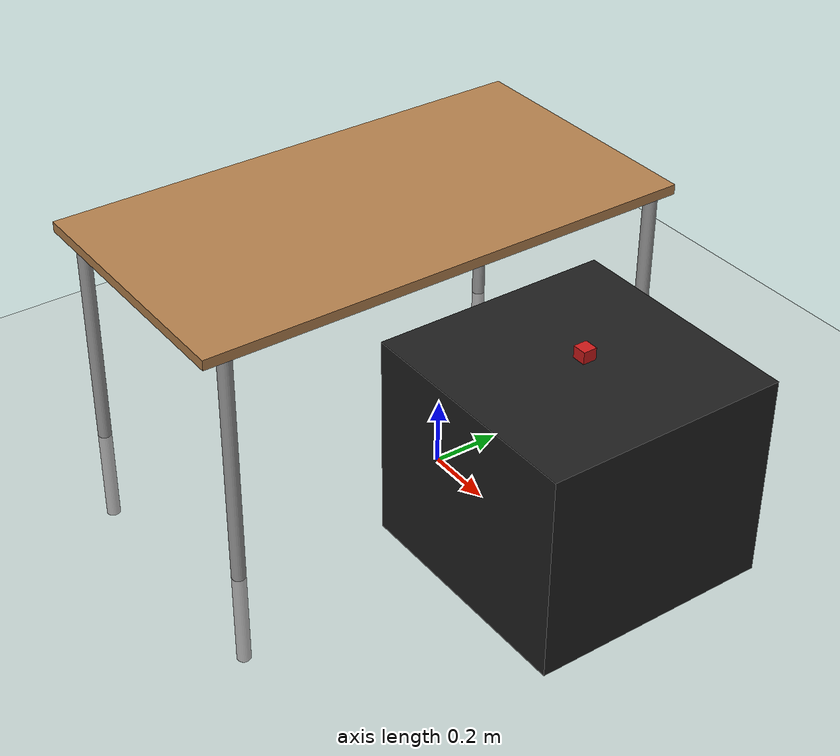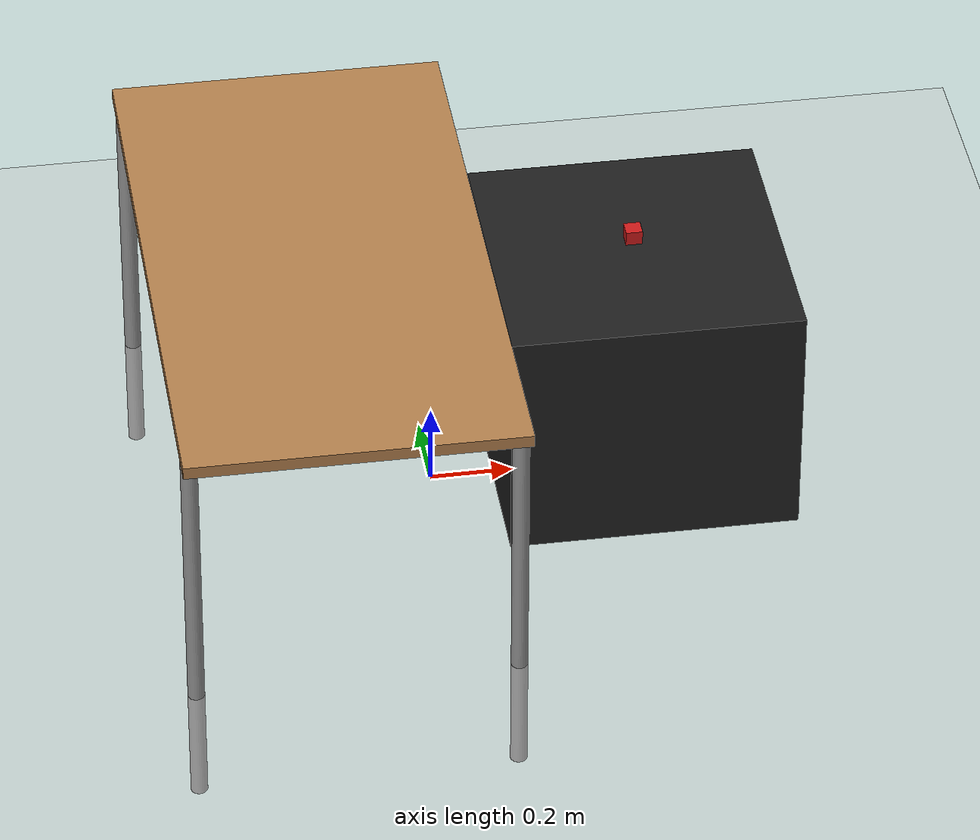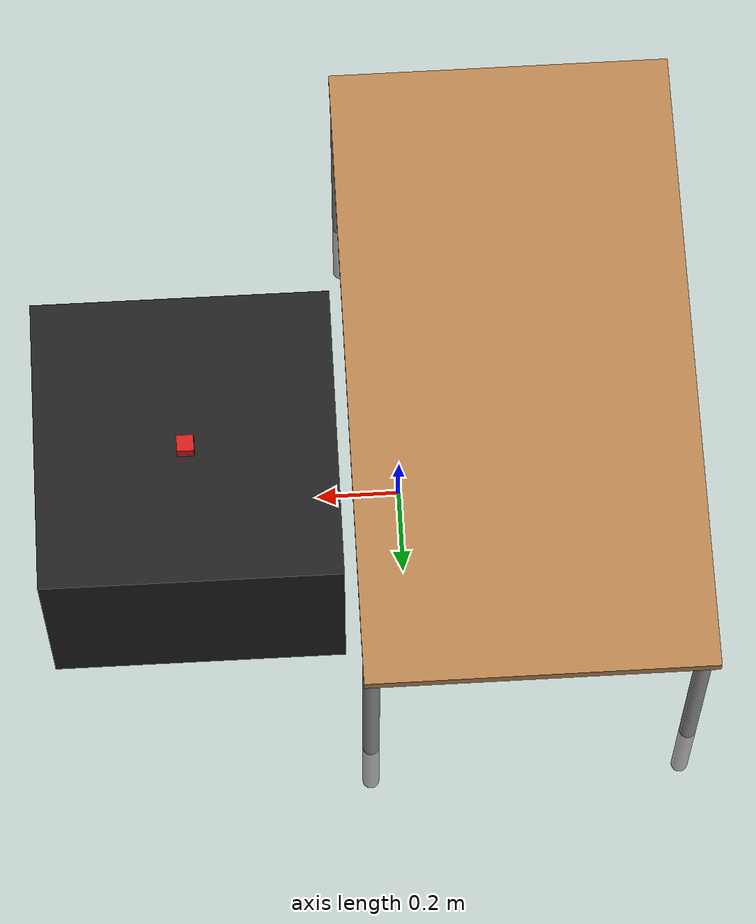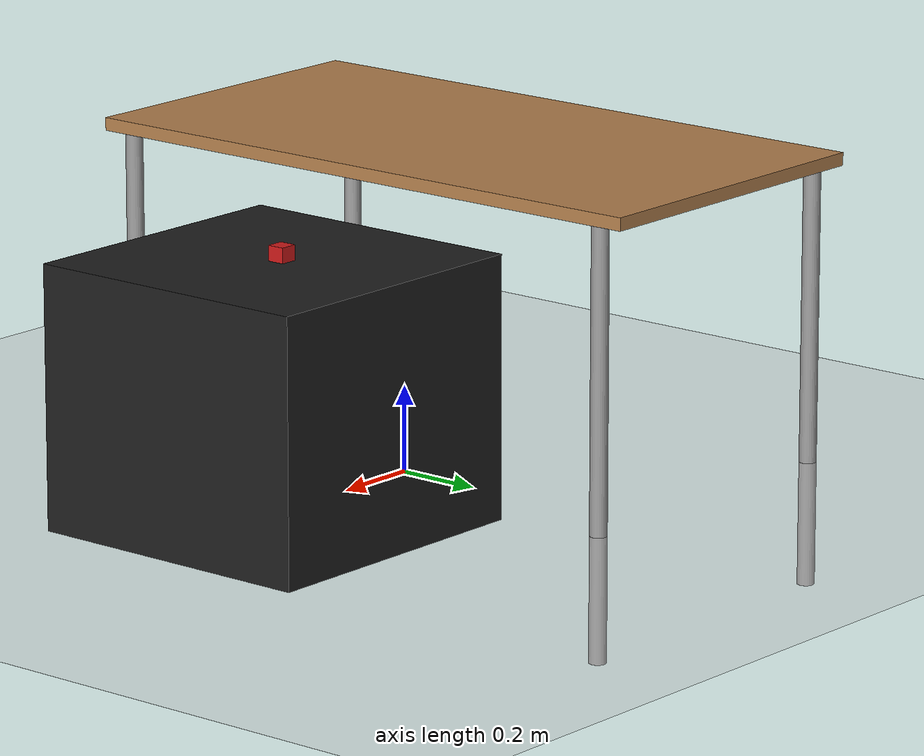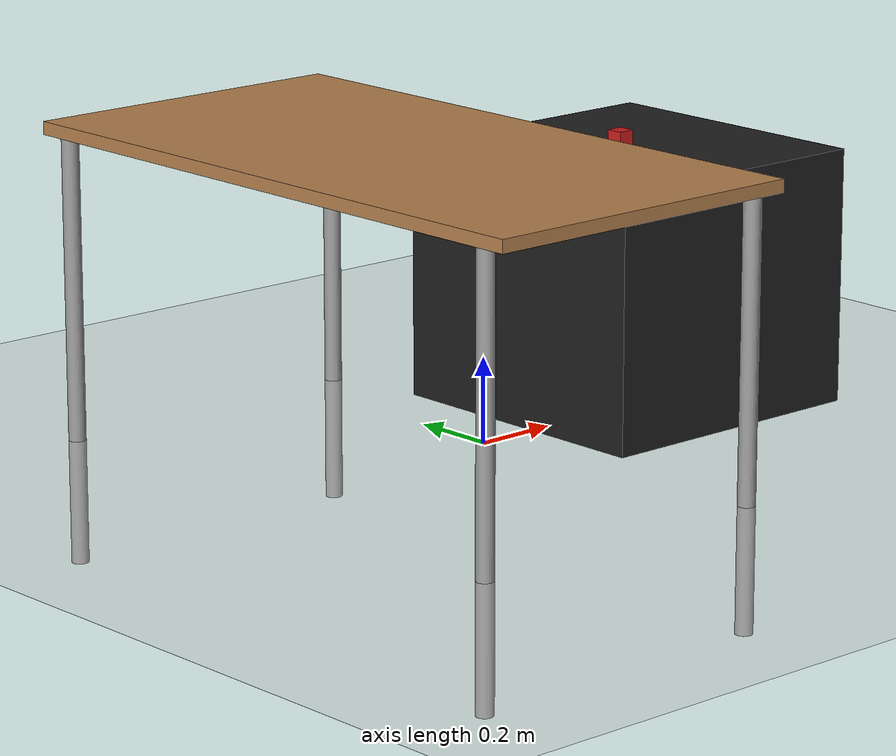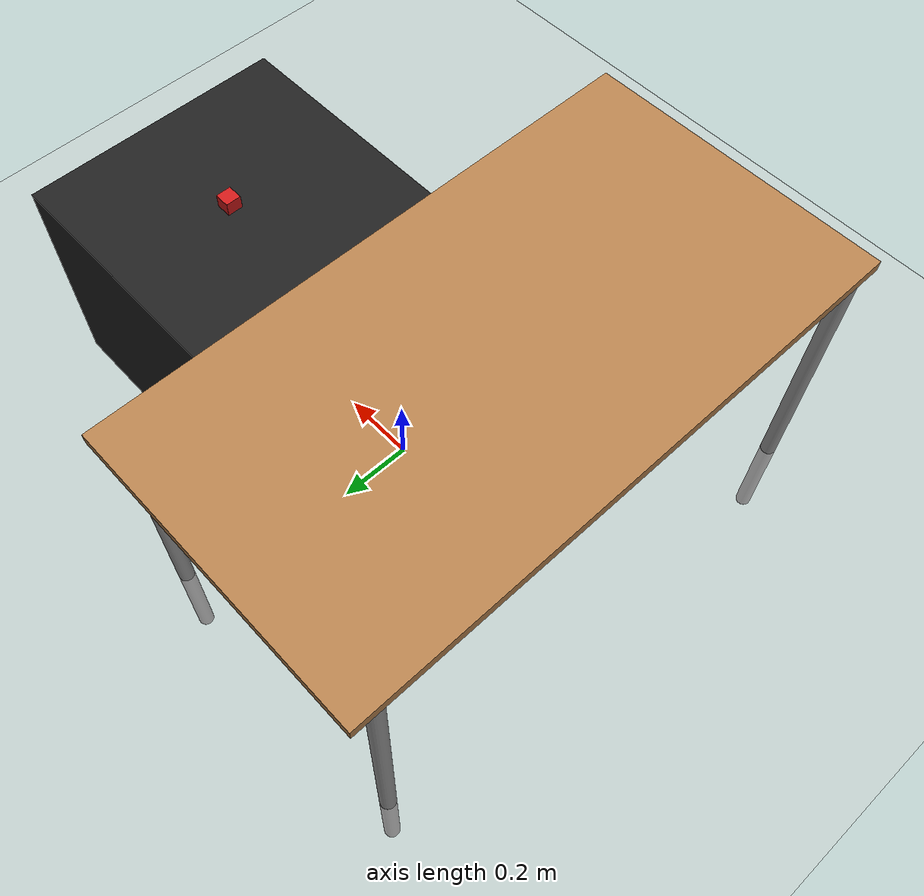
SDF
<sdf version="1.7">
 <world name="default">
  <plugin name="ros_link_attacher_plugin" filename="libgazebo_ros_link_attacher.so"/>
  <light name="sun" type="directional">
   <pose>0 0 10 0 -0 0</pose>
   <diffuse>0.8 0.8 0.8 1</diffuse>
   <specular>0.2 0.2 0.2 1</specular>
   <attenuation>
    <range>1000</range>
    <constant>0.9</constant>
    <linear>0.01</linear>
    <quadratic>0.001</quadratic>
   </attenuation>
   <direction>-0.5 0.1 -0.9</direction>
   <spot><inner_angle>0</inner_angle><outer_angle>0</outer_angle><falloff>0</falloff></spot>
  </light>
  <model name="ground_plane">
   <static>1</static>
   <link name="link">
    <collision name="collision">
     <geometry><plane><normal>0 0 1</normal><size>100 100</size></plane></geometry>
     <surface><friction><ode><mu>100</mu><mu2>50</mu2></ode></friction></surface>
    </collision>
    <visual name="visual">
     <cast_shadows>0</cast_shadows>
     <geometry><plane><normal>0 0 1</normal><size>100 100</size></plane></geometry>
     <material>
      <script><uri>file://media/materials/scripts/gazebo.material</uri><name>Gazebo/Grey</name></script>
     </material>
    </visual>
   </link>
  </model>
  <gravity>0 0 -9.8</gravity>
  <magnetic_field>6e-06 2.3e-05 -4.2e-05</magnetic_field>
  <atmosphere type="adiabatic"/>
  <physics name="default_physics" default="0" type="ode">
   <max_step_size>0.001</max_step_size>
   <real_time_factor>1</real_time_factor>
   <real_time_update_rate>1000</real_time_update_rate>
  </physics>
  <scene><ambient>0.4 0.4 0.4 1</ambient><background>0.7 0.7 0.7 1</background><shadows>1</shadows></scene>
  <spherical_coordinates>
   <surface_model>EARTH_WGS84</surface_model>
   <latitude_deg>0</latitude_deg>
   <longitude_deg>0</longitude_deg>
   <elevation>0</elevation>
   <heading_deg>0</heading_deg>
  </spherical_coordinates>
  <audio><device>default</device></audio>
  <model name="table">
   <static>1</static>
   <link name="base_link">
    <inertial>
     <pose>0 0 0.1 0 -0 0</pose>
     <mass>1</mass>
     <inertia><ixx>1</ixx><ixy>0</ixy><ixz>0</ixz><iyy>1</iyy><iyz>0</iyz><izz>1</izz></inertia>
    </inertial>
    <collision name="base_link_collision">
     <pose>0 0 0.3 0 -0 0</pose>
     <geometry><box><size>0.7 0.7 0.6</size></box></geometry>
     <surface><friction><ode><mu>50</mu><mu2>50</mu2></ode></friction></surface>
    </collision>
    <visual name="base_link_visual">
     <pose>0 0 0.3 0 -0 0</pose>
     <geometry><box><size>0.7 0.7 0.6</size></box></geometry>
     <material>
      <script><name>Gazebo/FlatBlack</name><uri>file://media/materials/scripts/gazebo.material</uri></script>
     </material>
    </visual>
   </link>
   <joint name="joint_fix" type="fixed"><child>base_link</child><parent>world</parent></joint>
   <pose>0.499948 0.05504 0 0 -0 1.57</pose>
  </model>
  <model name="obj_0">
   <link name="base_link">
    <inertial>
     <mass>0.05</mass>
     <inertia><ixx>1e-05</ixx><ixy>0</ixy><ixz>0</ixz><iyy>1e-05</iyy><iyz>0</iyz><izz>1e-05</izz></inertia>
    </inertial>
    <collision name="collision">
     <geometry><box><size>0.03 0.03 0.03</size></box></geometry>
     <surface>
      <friction><ode><mu>50</mu><mu2>50</mu2></ode></friction>
      <contact><ode><min_depth>0.001</min_depth><max_vel>0</max_vel></ode></contact>
     </surface>
    </collision>
    <visual name="visual">
     <geometry><box><size>0.04 0.04 0.04</size></box></geometry>
     <material>
      <ambient>0.8 0.1 0.1 1</ambient>
      <diffuse>0.8 0.1 0.1 1</diffuse>
      <specular>0 0 0 0</specular>
      <emissive>0 0 0 1</emissive>
     </material>
    </visual>
   </link>
   <pose>0.500002 0.080098 0.614989 0.000168 0.000168 4.2e-05</pose>
  </model>
  <model name="table_0">
   <static>1</static>
   <link name="link">
    <collision name="surface">
     <pose>0 0 1 0 -0 0</pose>
     <geometry><box><size>1.5 0.8 0.03</size></box></geometry>
     <surface><friction><ode><mu>0.6</mu><mu2>0.6</mu2></ode></friction></surface>
    </collision>
    <visual name="visual1">
     <pose>0 0 1 0 -0 0</pose>
     <geometry><box><size>1.5 0.8 0.03</size></box></geometry>
     <material>
      <script><uri>file://media/materials/scripts/gazebo.material</uri><name>Gazebo/Wood</name></script>
     </material>
    </visual>
    <collision name="front_left_leg">
     <pose>0.68 0.38 0.5 0 -0 0</pose>
     <geometry><cylinder><radius>0.02</radius><length>1</length></cylinder></geometry>
    </collision>
    <visual name="front_left_leg">
     <pose>0.68 0.38 0.5 0 -0 0</pose>
     <geometry><cylinder><radius>0.02</radius><length>1</length></cylinder></geometry>
     <material>
      <script><uri>file://media/materials/scripts/gazebo.material</uri><name>Gazebo/Grey</name></script>
     </material>
    </visual>
    <collision name="front_right_leg">
     <pose>0.68 -0.38 0.5 0 -0 0</pose>
     <geometry><cylinder><radius>0.02</radius><length>1</length></cylinder></geometry>
    </collision>
    <visual name="front_right_leg">
     <pose>0.68 -0.38 0.5 0 -0 0</pose>
     <geometry><cylinder><radius>0.02</radius><length>1</length></cylinder></geometry>
     <material>
      <script><uri>file://media/materials/scripts/gazebo.material</uri><name>Gazebo/Grey</name></script>
     </material>
    </visual>
    <collision name="back_right_leg">
     <pose>-0.68 -0.38 0.5 0 -0 0</pose>
     <geometry><cylinder><radius>0.02</radius><length>1</length></cylinder></geometry>
    </collision>
    <visual name="back_right_leg">
     <pose>-0.68 -0.38 0.5 0 -0 0</pose>
     <geometry><cylinder><radius>0.02</radius><length>1</length></cylinder></geometry>
     <material>
      <script><uri>file://media/materials/scripts/gazebo.material</uri><name>Gazebo/Grey</name></script>
     </material>
    </visual>
    <collision name="back_left_leg">
     <pose>-0.68 0.38 0.5 0 -0 0</pose>
     <geometry><cylinder><radius>0.02</radius><length>1</length></cylinder></geometry>
    </collision>
    <visual name="back_left_leg">
     <pose>-0.68 0.38 0.5 0 -0 0</pose>
     <geometry><cylinder><radius>0.02</radius><length>1</length></cylinder></geometry>
     <material>
      <script><uri>file://media/materials/scripts/gazebo.material</uri><name>Gazebo/Grey</name></script>
     </material>
    </visual>
   </link>
   <pose>-0.2768 -0.04087 -0.291743 0 -0 1.57228</pose>
  </model>
 </world>
</sdf>
